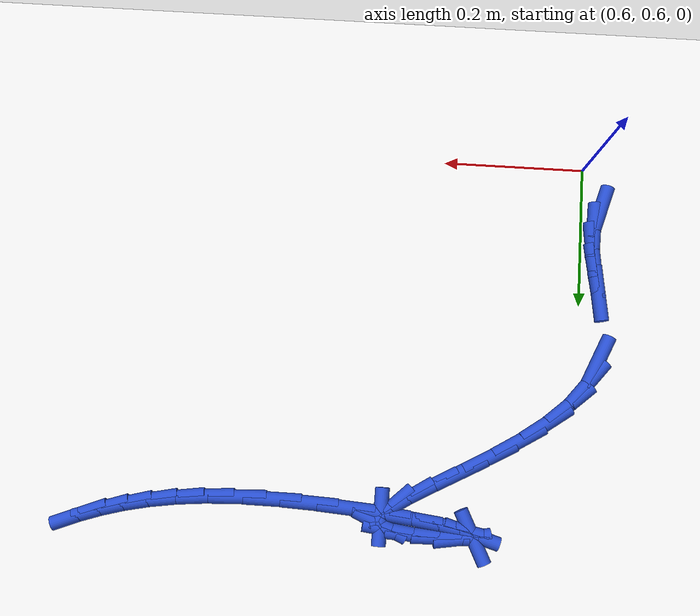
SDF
<sdf version="1.6">
 <world name="default">
  <model name="ground_plane">
   <static>1</static>
   <link name="link">
    <collision name="collision">
     <geometry><plane><normal>0 0 1</normal><size>100 100</size></plane></geometry>
     <surface><friction><ode><mu>100</mu><mu2>50</mu2></ode></friction></surface>
    </collision>
    <visual name="visual">
     <cast_shadows>0</cast_shadows>
     <geometry><plane><normal>0 0 1</normal><size>100 100</size></plane></geometry>
     <material>
      <script><uri>file://media/materials/scripts/gazebo.material</uri><name>Gazebo/WhiteGlow</name></script>
     </material>
    </visual>
   </link>
  </model>
  <model name="line">
   <link name="link_29">
    <pose>0.5762994749752313 0.6648978768077413 0.01 0 1.57 1.2864209547235084</pose>
    <collision name="collision">
     <geometry><cylinder><radius>0.01</radius><length>0.08</length></cylinder></geometry>
    </collision>
    <visual name="visual">
     <material>
      <script><name>Gazebo/Blue</name><uri>file://media/materials/scripts/gazebo.material</uri></script>
     </material>
     <geometry><cylinder><radius>0.01</radius><length>0.08</length></cylinder></geometry>
    </visual>
   </link>
   <link name="link_30">
    <pose>0.583909507532712 0.690933107924663 0.01 0 1.57 1.5363271752811638</pose>
    <collision name="collision">
     <geometry><cylinder><radius>0.01</radius><length>0.08</length></cylinder></geometry>
    </collision>
    <visual name="visual">
     <material>
      <script><name>Gazebo/Blue</name><uri>file://media/materials/scripts/gazebo.material</uri></script>
     </material>
     <geometry><cylinder><radius>0.01</radius><length>0.08</length></cylinder></geometry>
    </visual>
   </link>
   <link name="link_31">
    <pose>0.5848933159905345 0.7194635113572749 0.01 0 1.57 -1.451289024398585</pose>
    <collision name="collision">
     <geometry><cylinder><radius>0.01</radius><length>0.08</length></cylinder></geometry>
    </collision>
    <visual name="visual">
     <material>
      <script><name>Gazebo/Blue</name><uri>file://media/materials/scripts/gazebo.material</uri></script>
     </material>
     <geometry><cylinder><radius>0.01</radius><length>0.08</length></cylinder></geometry>
    </visual>
   </link>
   <link name="link_32">
    <pose>0.5812188673597649 0.7500636425615945 0.01 0 1.57 -1.3972261909447563</pose>
    <collision name="collision">
     <geometry><cylinder><radius>0.01</radius><length>0.08</length></cylinder></geometry>
    </collision>
    <visual name="visual">
     <material>
      <script><name>Gazebo/Blue</name><uri>file://media/materials/scripts/gazebo.material</uri></script>
     </material>
     <geometry><cylinder><radius>0.01</radius><length>0.08</length></cylinder></geometry>
    </visual>
   </link>
   <link name="link_33">
    <pose>0.575599478583929 0.7821131888332284 0.01 0 1.57 -1.4243188001058744</pose>
    <collision name="collision">
     <geometry><cylinder><radius>0.01</radius><length>0.08</length></cylinder></geometry>
    </collision>
    <visual name="visual">
     <material>
      <script><name>Gazebo/Blue</name><uri>file://media/materials/scripts/gazebo.material</uri></script>
     </material>
     <geometry><cylinder><radius>0.01</radius><length>0.08</length></cylinder></geometry>
    </visual>
   </link>
   <link name="link_36">
    <pose>0.574207828853295 0.8807544098014592 0.01 0 1.57 1.1613604403302198</pose>
    <collision name="collision">
     <geometry><cylinder><radius>0.01</radius><length>0.08</length></cylinder></geometry>
    </collision>
    <visual name="visual">
     <material>
      <script><name>Gazebo/Blue</name><uri>file://media/materials/scripts/gazebo.material</uri></script>
     </material>
     <geometry><cylinder><radius>0.01</radius><length>0.08</length></cylinder></geometry>
    </visual>
   </link>
   <link name="link_37">
    <pose>0.5879399685412801 0.9123981506826963 0.01 0 1.57 0.8999026367714584</pose>
    <collision name="collision">
     <geometry><cylinder><radius>0.01</radius><length>0.08</length></cylinder></geometry>
    </collision>
    <visual name="visual">
     <material>
      <script><name>Gazebo/Blue</name><uri>file://media/materials/scripts/gazebo.material</uri></script>
     </material>
     <geometry><cylinder><radius>0.01</radius><length>0.08</length></cylinder></geometry>
    </visual>
   </link>
   <link name="link_38">
    <pose>0.6118486610744582 0.9425208623737005 0.01 0 1.57 0.7274534972356197</pose>
    <collision name="collision">
     <geometry><cylinder><radius>0.01</radius><length>0.08</length></cylinder></geometry>
    </collision>
    <visual name="visual">
     <material>
      <script><name>Gazebo/Blue</name><uri>file://media/materials/scripts/gazebo.material</uri></script>
     </material>
     <geometry><cylinder><radius>0.01</radius><length>0.08</length></cylinder></geometry>
    </visual>
   </link>
   <link name="link_39">
    <pose>0.643773873415388 0.9709452200134729 0.01 0 1.57 0.6196383089457602</pose>
    <collision name="collision">
     <geometry><cylinder><radius>0.01</radius><length>0.08</length></cylinder></geometry>
    </collision>
    <visual name="visual">
     <material>
      <script><name>Gazebo/Blue</name><uri>file://media/materials/scripts/gazebo.material</uri></script>
     </material>
     <geometry><cylinder><radius>0.01</radius><length>0.08</length></cylinder></geometry>
    </visual>
   </link>
   <link name="link_40">
    <pose>0.6810540120918513 0.9975394958628835 0.01 0 1.57 0.5522609275304683</pose>
    <collision name="collision">
     <geometry><cylinder><radius>0.01</radius><length>0.08</length></cylinder></geometry>
    </collision>
    <visual name="visual">
     <material>
      <script><name>Gazebo/Blue</name><uri>file://media/materials/scripts/gazebo.material</uri></script>
     </material>
     <geometry><cylinder><radius>0.01</radius><length>0.08</length></cylinder></geometry>
    </visual>
   </link>
   <link name="link_41">
    <pose>0.7210274836316295 1.0221719621828025 0.01 0 1.57 0.513072748128519</pose>
    <collision name="collision">
     <geometry><cylinder><radius>0.01</radius><length>0.08</length></cylinder></geometry>
    </collision>
    <visual name="visual">
     <material>
      <script><name>Gazebo/Blue</name><uri>file://media/materials/scripts/gazebo.material</uri></script>
     </material>
     <geometry><cylinder><radius>0.01</radius><length>0.08</length></cylinder></geometry>
    </visual>
   </link>
   <link name="link_42">
    <pose>0.7610326945625043 1.0447108912340999 0.01 0 1.57 0.4978423697049908</pose>
    <collision name="collision">
     <geometry><cylinder><radius>0.01</radius><length>0.08</length></cylinder></geometry>
    </collision>
    <visual name="visual">
     <material>
      <script><name>Gazebo/Blue</name><uri>file://media/materials/scripts/gazebo.material</uri></script>
     </material>
     <geometry><cylinder><radius>0.01</radius><length>0.08</length></cylinder></geometry>
    </visual>
   </link>
   <link name="link_43">
    <pose>0.7984080514122573 1.0650245552776458 0.01 0 1.57 0.5102434715136569</pose>
    <collision name="collision">
     <geometry><cylinder><radius>0.01</radius><length>0.08</length></cylinder></geometry>
    </collision>
    <visual name="visual">
     <material>
      <script><name>Gazebo/Blue</name><uri>file://media/materials/scripts/gazebo.material</uri></script>
     </material>
     <geometry><cylinder><radius>0.01</radius><length>0.08</length></cylinder></geometry>
    </visual>
   </link>
   <link name="link_44">
    <pose>0.830491960708671 1.0829812265743113 0.01 0 1.57 0.5700241772763422</pose>
    <collision name="collision">
     <geometry><cylinder><radius>0.01</radius><length>0.08</length></cylinder></geometry>
    </collision>
    <visual name="visual">
     <material>
      <script><name>Gazebo/Blue</name><uri>file://media/materials/scripts/gazebo.material</uri></script>
     </material>
     <geometry><cylinder><radius>0.01</radius><length>0.08</length></cylinder></geometry>
    </visual>
   </link>
   <link name="link_45">
    <pose>0.8546228289795263 1.0984491773849665 0.01 0 1.57 0.7600380319440292</pose>
    <collision name="collision">
     <geometry><cylinder><radius>0.01</radius><length>0.08</length></cylinder></geometry>
    </collision>
    <visual name="visual">
     <material>
      <script><name>Gazebo/Blue</name><uri>file://media/materials/scripts/gazebo.material</uri></script>
     </material>
     <geometry><cylinder><radius>0.01</radius><length>0.08</length></cylinder></geometry>
    </visual>
   </link>
   <link name="link_46">
    <pose>0.8681390627526052 1.111296679970481 0.01 0 1.57 1.5470268530313165</pose>
    <collision name="collision">
     <geometry><cylinder><radius>0.01</radius><length>0.08</length></cylinder></geometry>
    </collision>
    <visual name="visual">
     <material>
      <script><name>Gazebo/Blue</name><uri>file://media/materials/scripts/gazebo.material</uri></script>
     </material>
     <geometry><cylinder><radius>0.01</radius><length>0.08</length></cylinder></geometry>
    </visual>
   </link>
   <link name="link_47">
    <pose>0.8683790685556898 1.1213920065917264 0.01 0 1.57 -0.4308130709094269</pose>
    <collision name="collision">
     <geometry><cylinder><radius>0.01</radius><length>0.08</length></cylinder></geometry>
    </collision>
    <visual name="visual">
     <material>
      <script><name>Gazebo/Blue</name><uri>file://media/materials/scripts/gazebo.material</uri></script>
     </material>
     <geometry><cylinder><radius>0.01</radius><length>0.08</length></cylinder></geometry>
    </visual>
   </link>
   <link name="link_48">
    <pose>0.8526880776541562 1.1286036719582224 0.01 0 1.57 -0.1391327244283233</pose>
    <collision name="collision">
     <geometry><cylinder><radius>0.01</radius><length>0.08</length></cylinder></geometry>
    </collision>
    <visual name="visual">
     <material>
      <script><name>Gazebo/Blue</name><uri>file://media/materials/scripts/gazebo.material</uri></script>
     </material>
     <geometry><cylinder><radius>0.01</radius><length>0.08</length></cylinder></geometry>
    </visual>
   </link>
   <link name="link_49">
    <pose>0.8218489156038112 1.1329223112398301 0.01 0 1.57 -0.04793167152168271</pose>
    <collision name="collision">
     <geometry><cylinder><radius>0.01</radius><length>0.08</length></cylinder></geometry>
    </collision>
    <visual name="visual">
     <material>
      <script><name>Gazebo/Blue</name><uri>file://media/materials/scripts/gazebo.material</uri></script>
     </material>
     <geometry><cylinder><radius>0.01</radius><length>0.08</length></cylinder></geometry>
    </visual>
   </link>
   <link name="link_50">
    <pose>0.785652786784137 1.1346585820627892 0.01 0 1.57 0.015958697669039228</pose>
    <collision name="collision">
     <geometry><cylinder><radius>0.01</radius><length>0.08</length></cylinder></geometry>
    </collision>
    <visual name="visual">
     <material>
      <script><name>Gazebo/Blue</name><uri>file://media/materials/scripts/gazebo.material</uri></script>
     </material>
     <geometry><cylinder><radius>0.01</radius><length>0.08</length></cylinder></geometry>
    </visual>
   </link>
   <link name="link_51">
    <pose>0.7553485324001632 1.1341749245689907 0.01 0 1.57 0.15794410453557198</pose>
    <collision name="collision">
     <geometry><cylinder><radius>0.01</radius><length>0.08</length></cylinder></geometry>
    </collision>
    <visual name="visual">
     <material>
      <script><name>Gazebo/Blue</name><uri>file://media/materials/scripts/gazebo.material</uri></script>
     </material>
     <geometry><cylinder><radius>0.01</radius><length>0.08</length></cylinder></geometry>
    </visual>
   </link>
   <link name="link_52">
    <pose>0.7406864272374709 1.1318396805292927 0.01 0 1.57 -1.1145672192782712</pose>
    <collision name="collision">
     <geometry><cylinder><radius>0.01</radius><length>0.08</length></cylinder></geometry>
    </collision>
    <visual name="visual">
     <material>
      <script><name>Gazebo/Blue</name><uri>file://media/materials/scripts/gazebo.material</uri></script>
     </material>
     <geometry><cylinder><radius>0.01</radius><length>0.08</length></cylinder></geometry>
    </visual>
   </link>
   <link name="link_53">
    <pose>0.7425432426471108 1.1280561371959426 0.01 0 1.57 -0.2923841487421327</pose>
    <collision name="collision">
     <geometry><cylinder><radius>0.01</radius><length>0.08</length></cylinder></geometry>
    </collision>
    <visual name="visual">
     <material>
      <script><name>Gazebo/Blue</name><uri>file://media/materials/scripts/gazebo.material</uri></script>
     </material>
     <geometry><cylinder><radius>0.01</radius><length>0.08</length></cylinder></geometry>
    </visual>
   </link>
   <link name="link_54">
    <pose>0.7585417912916206 1.1232403965063458 0.01 0 1.57 -0.1932417491703598</pose>
    <collision name="collision">
     <geometry><cylinder><radius>0.01</radius><length>0.08</length></cylinder></geometry>
    </collision>
    <visual name="visual">
     <material>
      <script><name>Gazebo/Blue</name><uri>file://media/materials/scripts/gazebo.material</uri></script>
     </material>
     <geometry><cylinder><radius>0.01</radius><length>0.08</length></cylinder></geometry>
    </visual>
   </link>
   <link name="link_55">
    <pose>0.7862999515703305 1.117808579829942 0.01 0 1.57 -0.15050719407081997</pose>
    <collision name="collision">
     <geometry><cylinder><radius>0.01</radius><length>0.08</length></cylinder></geometry>
    </collision>
    <visual name="visual">
     <material>
      <script><name>Gazebo/Blue</name><uri>file://media/materials/scripts/gazebo.material</uri></script>
     </material>
     <geometry><cylinder><radius>0.01</radius><length>0.08</length></cylinder></geometry>
    </visual>
   </link>
   <link name="link_56">
    <pose>0.8234356018825693 1.1121768085361694 0.01 0 1.57 -0.12210600551469747</pose>
    <collision name="collision">
     <geometry><cylinder><radius>0.01</radius><length>0.08</length></cylinder></geometry>
    </collision>
    <visual name="visual">
     <material>
      <script><name>Gazebo/Blue</name><uri>file://media/materials/scripts/gazebo.material</uri></script>
     </material>
     <geometry><cylinder><radius>0.01</radius><length>0.08</length></cylinder></geometry>
    </visual>
   </link>
   <link name="link_57">
    <pose>0.8675666206276664 1.1067612039944672 0.01 0 1.57 -0.09781767268450549</pose>
    <collision name="collision">
     <geometry><cylinder><radius>0.01</radius><length>0.08</length></cylinder></geometry>
    </collision>
    <visual name="visual">
     <material>
      <script><name>Gazebo/Blue</name><uri>file://media/materials/scripts/gazebo.material</uri></script>
     </material>
     <geometry><cylinder><radius>0.01</radius><length>0.08</length></cylinder></geometry>
    </visual>
   </link>
   <link name="link_58">
    <pose>0.9163108862049509 1.1019778875742745 0.01 0 1.57 -0.07313813435281924</pose>
    <collision name="collision">
     <geometry><cylinder><radius>0.01</radius><length>0.08</length></cylinder></geometry>
    </collision>
    <visual name="visual">
     <material>
      <script><name>Gazebo/Blue</name><uri>file://media/materials/scripts/gazebo.material</uri></script>
     </material>
     <geometry><cylinder><radius>0.01</radius><length>0.08</length></cylinder></geometry>
    </visual>
   </link>
   <link name="link_59">
    <pose>0.967286277013752 1.09824298064503 0.01 0 1.57 -0.04464131295387199</pose>
    <collision name="collision">
     <geometry><cylinder><radius>0.01</radius><length>0.08</length></cylinder></geometry>
    </collision>
    <visual name="visual">
     <material>
      <script><name>Gazebo/Blue</name><uri>file://media/materials/scripts/gazebo.material</uri></script>
     </material>
     <geometry><cylinder><radius>0.01</radius><length>0.08</length></cylinder></geometry>
    </visual>
   </link>
   <link name="link_60">
    <pose>1.0181106714533994 1.0959726045761724 0.01 0 1.57 -0.008094579615655607</pose>
    <collision name="collision">
     <geometry><cylinder><radius>0.01</radius><length>0.08</length></cylinder></geometry>
    </collision>
    <visual name="visual">
     <material>
      <script><name>Gazebo/Blue</name><uri>file://media/materials/scripts/gazebo.material</uri></script>
     </material>
     <geometry><cylinder><radius>0.01</radius><length>0.08</length></cylinder></geometry>
    </visual>
   </link>
   <link name="link_61">
    <pose>1.0664076326705691 1.0955816524396846 0.01 0 1.57 0.038887482790159314</pose>
    <collision name="collision">
     <geometry><cylinder><radius>0.01</radius><length>0.08</length></cylinder></geometry>
    </collision>
    <visual name="visual">
     <material>
      <script><name>Gazebo/Blue</name><uri>file://media/materials/scripts/gazebo.material</uri></script>
     </material>
     <geometry><cylinder><radius>0.01</radius><length>0.08</length></cylinder></geometry>
    </visual>
   </link>
   <link name="link_62">
    <pose>1.1106441977543198 1.0973027687687595 0.01 0 1.57 0.09119885731816915</pose>
    <collision name="collision">
     <geometry><cylinder><radius>0.01</radius><length>0.08</length></cylinder></geometry>
    </collision>
    <visual name="visual">
     <material>
      <script><name>Gazebo/Blue</name><uri>file://media/materials/scripts/gazebo.material</uri></script>
     </material>
     <geometry><cylinder><radius>0.01</radius><length>0.08</length></cylinder></geometry>
    </visual>
   </link>
   <link name="link_63">
    <pose>1.1510167459639884 1.1009949409297635 0.01 0 1.57 0.1472698020350449</pose>
    <collision name="collision">
     <geometry><cylinder><radius>0.01</radius><length>0.08</length></cylinder></geometry>
    </collision>
    <visual name="visual">
     <material>
      <script><name>Gazebo/Blue</name><uri>file://media/materials/scripts/gazebo.material</uri></script>
     </material>
     <geometry><cylinder><radius>0.01</radius><length>0.08</length></cylinder></geometry>
    </visual>
   </link>
   <link name="link_64">
    <pose>1.187933694583317 1.1064713414533276 0.01 0 1.57 0.2058933623002084</pose>
    <collision name="collision">
     <geometry><cylinder><radius>0.01</radius><length>0.08</length></cylinder></geometry>
    </collision>
    <visual name="visual">
     <material>
      <script><name>Gazebo/Blue</name><uri>file://media/materials/scripts/gazebo.material</uri></script>
     </material>
     <geometry><cylinder><radius>0.01</radius><length>0.08</length></cylinder></geometry>
    </visual>
   </link>
   <link name="link_65">
    <pose>1.2218034608960486 1.113545142870085 0.01 0 1.57 0.2652631973887757</pose>
    <collision name="collision">
     <geometry><cylinder><radius>0.01</radius><length>0.08</length></cylinder></geometry>
    </collision>
    <visual name="visual">
     <material>
      <script><name>Gazebo/Blue</name><uri>file://media/materials/scripts/gazebo.material</uri></script>
     </material>
     <geometry><cylinder><radius>0.01</radius><length>0.08</length></cylinder></geometry>
    </visual>
   </link>
   <link name="link_66">
    <pose>1.253034462185925 1.122029517710668 0.01 0 1.57 0.32302972576154204</pose>
    <collision name="collision">
     <geometry><cylinder><radius>0.01</radius><length>0.08</length></cylinder></geometry>
    </collision>
    <visual name="visual">
     <material>
      <script><name>Gazebo/Blue</name><uri>file://media/materials/scripts/gazebo.material</uri></script>
     </material>
     <geometry><cylinder><radius>0.01</radius><length>0.08</length></cylinder></geometry>
    </visual>
   </link>
   <link name="link_67">
    <pose>1.2820351157366898 1.1317376385057092 0.01 0 1.57 0.37648914779969817</pose>
    <collision name="collision">
     <geometry><cylinder><radius>0.01</radius><length>0.08</length></cylinder></geometry>
    </collision>
    <visual name="visual">
     <material>
      <script><name>Gazebo/Blue</name><uri>file://media/materials/scripts/gazebo.material</uri></script>
     </material>
     <geometry><cylinder><radius>0.01</radius><length>0.08</length></cylinder></geometry>
    </visual>
   </link>
  </model>
 </world>
</sdf>
